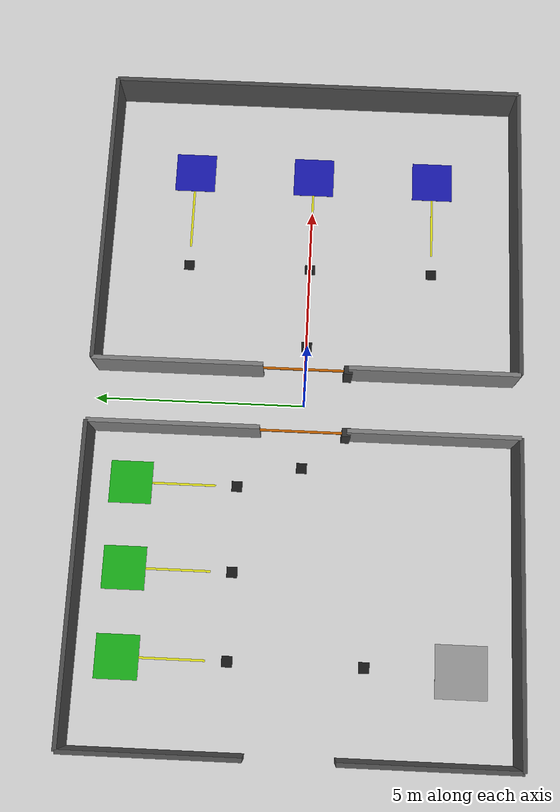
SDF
<?xml version="1.0" ?>
<sdf version="1.6">
  <world name="nebula_saha_world">

    <!-- Fizik motoru -->
    <physics type="ode">
      <max_step_size>0.001</max_step_size>
      <real_time_factor>1.0</real_time_factor>
      <real_time_update_rate>1000</real_time_update_rate>
    </physics>

    <!-- Güneş ışığı -->
    <light name="sun" type="directional">
      <cast_shadows>true</cast_shadows>
      <pose>0 0 12 0 0 0</pose>
      <diffuse>0.8 0.8 0.8 1</diffuse>
      <specular>0.2 0.2 0.2 1</specular>
      <direction>-0.5 0.1 -0.9</direction>
    </light>

    <!-- Zemin -->
    <model name="ground_plane">
      <static>true</static>
      <link name="link">
        <collision name="collision">
          <geometry>
            <plane>
              <normal>0 0 1</normal>
              <size>100 100</size>
            </plane>
          </geometry>
          <surface>
            <friction>
              <ode><mu>100</mu><mu2>50</mu2></ode>
            </friction>
          </surface>
        </collision>
        <visual name="visual">
          <geometry>
            <plane>
              <normal>0 0 1</normal>
              <size>100 100</size>
            </plane>
          </geometry>
          <material>
            <ambient>0.85 0.85 0.85 1</ambient>
            <diffuse>0.85 0.85 0.85 1</diffuse>
          </material>
        </visual>
      </link>
    </model>

    <!-- ===== DIŞ ÇERÇEVE DUVARLARI (Giriş/Çıkış Açıklıkları ile Birlikte) ===== -->

    <!-- Üst Duvar (Y = 5, Koridor Girişi İçin Ortası Açık: x = -0.75 ile x = 0.75 arası boşluk) -->
    <!-- Üst Duvar Sol Kısım -->
    <model name="outer_wall_top_left">
      <static>true</static>
      <pose>-4.375 5 0.5 0 0 0</pose>
      <link name="link">
        <collision name="collision">
          <geometry><box><size>7.25 0.1 1.0</size></box></geometry>
        </collision>
        <visual name="visual">
          <geometry><box><size>7.25 0.1 1.0</size></box></geometry>
          <material><ambient>0.3 0.3 0.3 1</ambient><diffuse>0.3 0.3 0.3 1</diffuse></material>
        </visual>
      </link>
    </model>

    <!-- Üst Duvar Sağ Kısım -->
    <model name="outer_wall_top_right">
      <static>true</static>
      <pose>4.375 5 0.5 0 0 0</pose>
      <link name="link">
        <collision name="collision">
          <geometry><box><size>7.25 0.1 1.0</size></box></geometry>
        </collision>
        <visual name="visual">
          <geometry><box><size>7.25 0.1 1.0</size></box></geometry>
          <material><ambient>0.3 0.3 0.3 1</ambient><diffuse>0.3 0.3 0.3 1</diffuse></material>
        </visual>
      </link>
    </model>

    <!-- Alt Duvar (Y = -5, Koridor Çıkışı İçin Ortası Açık: x = -0.75 ile x = 0.75 arası boşluk) -->
    <!-- Alt Duvar Sol Kısım -->
    <model name="outer_wall_bottom_left">
      <static>true</static>
      <pose>-4.375 -5 0.5 0 0 0</pose>
      <link name="link">
        <collision name="collision">
          <geometry><box><size>7.25 0.1 1.0</size></box></geometry>
        </collision>
        <visual name="visual">
          <geometry><box><size>7.25 0.1 1.0</size></box></geometry>
          <material><ambient>0.3 0.3 0.3 1</ambient><diffuse>0.3 0.3 0.3 1</diffuse></material>
        </visual>
      </link>
    </model>

    <!-- Alt Duvar Sağ Kısım -->
    <model name="outer_wall_bottom_right">
      <static>true</static>
      <pose>4.375 -5 0.5 0 0 0</pose>
      <link name="link">
        <collision name="collision">
          <geometry><box><size>7.25 0.1 1.0</size></box></geometry>
        </collision>
        <visual name="visual">
          <geometry><box><size>7.25 0.1 1.0</size></box></geometry>
          <material><ambient>0.3 0.3 0.3 1</ambient><diffuse>0.3 0.3 0.3 1</diffuse></material>
        </visual>
      </link>
    </model>

    <!-- Sol Dış Duvar (X = -8, Sol Orta Kapı Açıklığı İçin Ortası Açık: y = -1.0 ile y = 1.0 arası boşluk) -->
    <!-- Sol Duvar Üst Kısım -->
    <model name="outer_wall_left_top">
      <static>true</static>
      <pose>-8 3.0 0.5 0 0 0</pose>
      <link name="link">
        <collision name="collision">
          <geometry><box><size>0.1 4.0 1.0</size></box></geometry>
        </collision>
        <visual name="visual">
          <geometry><box><size>0.1 4.0 1.0</size></box></geometry>
          <material><ambient>0.3 0.3 0.3 1</ambient><diffuse>0.3 0.3 0.3 1</diffuse></material>
        </visual>
      </link>
    </model>

    <!-- Sol Duvar Alt Kısım -->
    <model name="outer_wall_left_bottom">
      <static>true</static>
      <pose>-8 -3.0 0.5 0 0 0</pose>
      <link name="link">
        <collision name="collision">
          <geometry><box><size>0.1 4.0 1.0</size></box></geometry>
        </collision>
        <visual name="visual">
          <geometry><box><size>0.1 4.0 1.0</size></box></geometry>
          <material><ambient>0.3 0.3 0.3 1</ambient><diffuse>0.3 0.3 0.3 1</diffuse></material>
        </visual>
      </link>
    </model>

    <!-- Sağ Dış Duvar (X = 8, Tam Kapalı) -->
    <model name="outer_wall_right">
      <static>true</static>
      <pose>8 0 0.5 0 0 0</pose>
      <link name="link">
        <collision name="collision">
          <geometry><box><size>0.1 10.0 1.0</size></box></geometry>
        </collision>
        <visual name="visual">
          <geometry><box><size>0.1 10.0 1.0</size></box></geometry>
          <material><ambient>0.3 0.3 0.3 1</ambient><diffuse>0.3 0.3 0.3 1</diffuse></material>
        </visual>
      </link>
    </model>

    <!-- ===== ÇİFT BÖLME KORİDOR DUVARLARI VE KAPILAR ===== -->
    <!-- Sol Koridor Duvarı Üst Kısım -->
    <model name="left_partition_wall_top">
      <static>true</static>
      <pose>-0.75 3.0 0.5 0 0 0</pose>
      <link name="link">
        <collision name="collision">
          <geometry><box><size>0.1 4.0 1.0</size></box></geometry>
        </collision>
        <visual name="visual">
          <geometry><box><size>0.1 4.0 1.0</size></box></geometry>
          <material><ambient>0.5 0.5 0.5 1</ambient><diffuse>0.5 0.5 0.5 1</diffuse></material>
        </visual>
      </link>
    </model>

    <!-- Sol Koridor Duvarı Alt Kısım -->
    <model name="left_partition_wall_bottom">
      <static>true</static>
      <pose>-0.75 -3.0 0.5 0 0 0</pose>
      <link name="link">
        <collision name="collision">
          <geometry><box><size>0.1 4.0 1.0</size></box></geometry>
        </collision>
        <visual name="visual">
          <geometry><box><size>0.1 4.0 1.0</size></box></geometry>
          <material><ambient>0.5 0.5 0.5 1</ambient><diffuse>0.5 0.5 0.5 1</diffuse></material>
        </visual>
      </link>
    </model>

    <!-- SOL BARİYER SİSTEMİ -->
    <!-- Sol Bariyer Kasası (Base) -->
    <model name="left_barrier_base">
      <static>true</static>
      <pose>-0.75 -1.0 0.4 0 0 0</pose>
      <link name="link">
        <collision name="collision"><geometry><box><size>0.2 0.2 0.8</size></box></geometry></collision>
        <visual name="visual">
          <geometry><box><size>0.2 0.2 0.8</size></box></geometry>
          <material><ambient>0.2 0.2 0.2 1</ambient><diffuse>0.2 0.2 0.2 1</diffuse></material>
        </visual>
      </link>
    </model>

    <!-- Sol Bariyer Kolu (Arm) -->
    <model name="left_barrier_arm">
      <static>true</static>
      <pose>-0.75 0.0 0.65 0 0 0</pose>
      <link name="link">
        <collision name="collision"><geometry><box><size>0.05 2.0 0.05</size></box></geometry></collision>
        <visual name="visual">
          <geometry><box><size>0.05 2.0 0.05</size></box></geometry>
          <material><ambient>0.8 0.4 0.0 1</ambient><diffuse>0.8 0.4 0.0 1</diffuse></material> <!-- Turuncu Bariyer Kolu -->
        </visual>
      </link>
    </model>

    <!-- Sağ Koridor Duvarı Üst Kısım -->
    <model name="right_partition_wall_top">
      <static>true</static>
      <pose>0.75 3.0 0.5 0 0 0</pose>
      <link name="link">
        <collision name="collision">
          <geometry><box><size>0.1 4.0 1.0</size></box></geometry>
        </collision>
        <visual name="visual">
          <geometry><box><size>0.1 4.0 1.0</size></box></geometry>
          <material><ambient>0.5 0.5 0.5 1</ambient><diffuse>0.5 0.5 0.5 1</diffuse></material>
        </visual>
      </link>
    </model>

    <!-- Sağ Koridor Duvarı Alt Kısım -->
    <model name="right_partition_wall_bottom">
      <static>true</static>
      <pose>0.75 -3.0 0.5 0 0 0</pose>
      <link name="link">
        <collision name="collision">
          <geometry><box><size>0.1 4.0 1.0</size></box></geometry>
        </collision>
        <visual name="visual">
          <geometry><box><size>0.1 4.0 1.0</size></box></geometry>
          <material><ambient>0.5 0.5 0.5 1</ambient><diffuse>0.5 0.5 0.5 1</diffuse></material>
        </visual>
      </link>
    </model>

    <!-- SAĞ BARİYER SİSTEMİ -->
    <!-- Sağ Bariyer Kasası (Base) -->
    <model name="right_barrier_base">
      <static>true</static>
      <pose>0.75 -1.0 0.4 0 0 0</pose>
      <link name="link">
        <collision name="collision"><geometry><box><size>0.2 0.2 0.8</size></box></geometry></collision>
        <visual name="visual">
          <geometry><box><size>0.2 0.2 0.8</size></box></geometry>
          <material><ambient>0.2 0.2 0.2 1</ambient><diffuse>0.2 0.2 0.2 1</diffuse></material>
        </visual>
      </link>
    </model>

    <!-- Sağ Bariyer Kolu (Arm) -->
    <model name="right_barrier_arm">
      <static>true</static>
      <pose>0.75 0.0 0.65 0 0 0</pose>
      <link name="link">
        <collision name="collision"><geometry><box><size>0.05 2.0 0.05</size></box></geometry></collision>
        <visual name="visual">
          <geometry><box><size>0.05 2.0 0.05</size></box></geometry>
          <material><ambient>0.8 0.4 0.0 1</ambient><diffuse>0.8 0.4 0.0 1</diffuse></material>
        </visual>
      </link>
    </model>

    <!-- ===== BAŞLANGIÇ VE YÜK ALMA/BIRAKMA BÖLGELERİ ===== -->
    <!-- Başlangıç Alanı (Zemin Seviyesinde İnce Plaka) -->
    <model name="start_area">
      <static>true</static>
      <pose>-6 -3.8 0.002 0 0 0</pose>
      <link name="link">
        <visual name="visual">
          <geometry><box><size>1.2 1.2 0.004</size></box></geometry>
          <material><ambient>0.6 0.6 0.6 1</ambient><diffuse>0.6 0.6 0.6 1</diffuse></material>
        </visual>
      </link>
    </model>

    <!-- Yük Alma Alanları (Yeşil Renk: A1, A2, A3) -->
    <model name="area_a1">
      <static>true</static>
      <pose>-6 4 0.002 0 0 0</pose>
      <link name="link">
        <visual name="visual">
          <geometry><box><size>1.0 1.0 0.004</size></box></geometry>
          <material><ambient>0.1 0.7 0.1 1</ambient><diffuse>0.1 0.7 0.1 1</diffuse></material>
        </visual>
      </link>
    </model>

    <model name="area_a2">
      <static>true</static>
      <pose>-4 4 0.002 0 0 0</pose>
      <link name="link">
        <visual name="visual">
          <geometry><box><size>1.0 1.0 0.004</size></box></geometry>
          <material><ambient>0.1 0.7 0.1 1</ambient><diffuse>0.1 0.7 0.1 1</diffuse></material>
        </visual>
      </link>
    </model>

    <model name="area_a3">
      <static>true</static>
      <pose>-2 4 0.002 0 0 0</pose>
      <link name="link">
        <visual name="visual">
          <geometry><box><size>1.0 1.0 0.004</size></box></geometry>
          <material><ambient>0.1 0.7 0.1 1</ambient><diffuse>0.1 0.7 0.1 1</diffuse></material>
        </visual>
      </link>
    </model>

    <!-- Yük Bırakma Alanları (Mavi Renk: B1, B2, B3) -->
    <model name="area_b1">
      <static>true</static>
      <pose>6 3 0.002 0 0 0</pose>
      <link name="link">
        <visual name="visual">
          <geometry><box><size>1.0 1.0 0.004</size></box></geometry>
          <material><ambient>0.1 0.1 0.7 1</ambient><diffuse>0.1 0.1 0.7 1</diffuse></material>
        </visual>
      </link>
    </model>

    <model name="area_b2">
      <static>true</static>
      <pose>6 0 0.002 0 0 0</pose>
      <link name="link">
        <visual name="visual">
          <geometry><box><size>1.0 1.0 0.004</size></box></geometry>
          <material><ambient>0.1 0.1 0.7 1</ambient><diffuse>0.1 0.1 0.7 1</diffuse></material>
        </visual>
      </link>
    </model>

    <model name="area_b3">
      <static>true</static>
      <pose>6 -3 0.002 0 0 0</pose>
      <link name="link">
        <visual name="visual">
          <geometry><box><size>1.0 1.0 0.004</size></box></geometry>
          <material><ambient>0.1 0.1 0.7 1</ambient><diffuse>0.1 0.1 0.7 1</diffuse></material>
        </visual>
      </link>
    </model>

    <!-- ===== 1.5 METRE HASSAS HİZALAMA ÇİZGİLERİ ===== -->
    <!-- A1 Giriş Çizgisi -->
    <model name="line_a1">
      <static>true</static>
      <pose>-6 2.75 0.003 0 0 0</pose>
      <link name="link">
        <visual name="visual">
          <geometry><box><size>0.05 1.5 0.002</size></box></geometry>
          <material><ambient>0.9 0.9 0.1 1</ambient><diffuse>0.9 0.9 0.1 1</diffuse></material> <!-- Sarı Şerit -->
        </visual>
      </link>
    </model>

    <!-- A2 Giriş Çizgisi -->
    <model name="line_a2">
      <static>true</static>
      <pose>-4 2.75 0.003 0 0 0</pose>
      <link name="link">
        <visual name="visual">
          <geometry><box><size>0.05 1.5 0.002</size></box></geometry>
          <material><ambient>0.9 0.9 0.1 1</ambient><diffuse>0.9 0.9 0.1 1</diffuse></material>
        </visual>
      </link>
    </model>

    <!-- A3 Giriş Çizgisi -->
    <model name="line_a3">
      <static>true</static>
      <pose>-2 2.75 0.003 0 0 0</pose>
      <link name="link">
        <visual name="visual">
          <geometry><box><size>0.05 1.5 0.002</size></box></geometry>
          <material><ambient>0.9 0.9 0.1 1</ambient><diffuse>0.9 0.9 0.1 1</diffuse></material>
        </visual>
      </link>
    </model>

    <!-- B1 Giriş Çizgisi (Yatay) -->
    <model name="line_b1">
      <static>true</static>
      <pose>4.75 3 0.003 0 0 0</pose>
      <link name="link">
        <visual name="visual">
          <geometry><box><size>1.5 0.05 0.002</size></box></geometry>
          <material><ambient>0.9 0.9 0.1 1</ambient><diffuse>0.9 0.9 0.1 1</diffuse></material>
        </visual>
      </link>
    </model>

    <!-- B2 Giriş Çizgisi (Yatay) -->
    <model name="line_b2">
      <static>true</static>
      <pose>4.75 0 0.003 0 0 0</pose>
      <link name="link">
        <visual name="visual">
          <geometry><box><size>1.5 0.05 0.002</size></box></geometry>
          <material><ambient>0.9 0.9 0.1 1</ambient><diffuse>0.9 0.9 0.1 1</diffuse></material>
        </visual>
      </link>
    </model>

    <!-- B3 Giriş Çizgisi (Yatay) -->
    <model name="line_b3">
      <static>true</static>
      <pose>4.75 -3 0.003 0 0 0</pose>
      <link name="link">
        <visual name="visual">
          <geometry><box><size>1.5 0.05 0.002</size></box></geometry>
          <material><ambient>0.9 0.9 0.1 1</ambient><diffuse>0.9 0.9 0.1 1</diffuse></material>
        </visual>
      </link>
    </model>

    <!-- ===== QR KOD MARKERLARI (Temsili Zemin Kareleri) ===== -->
    <!-- q1 (Başlangıç-D1 Arası) -->
    <model name="qr_q1">
      <static>true</static>
      <pose>-6 -1.6 0.004 0 0 0</pose>
      <link name="link">
        <visual name="visual">
          <geometry><box><size>0.25 0.25 0.002</size></box></geometry>
          <material><ambient>0.1 0.1 0.1 1</ambient><diffuse>0.1 0.1 0.1 1</diffuse></material>
        </visual>
      </link>
    </model>

    <!-- q2 (A1 Önü) -->
    <model name="qr_q2">
      <static>true</static>
      <pose>-6 1.5 0.004 0 0 0</pose>
      <link name="link">
        <visual name="visual">
          <geometry><box><size>0.25 0.25 0.002</size></box></geometry>
          <material><ambient>0.1 0.1 0.1 1</ambient><diffuse>0.1 0.1 0.1 1</diffuse></material>
        </visual>
      </link>
    </model>

    <!-- q3 (A2 Önü) -->
    <model name="qr_q3">
      <static>true</static>
      <pose>-4 1.5 0.004 0 0 0</pose>
      <link name="link">
        <visual name="visual">
          <geometry><box><size>0.25 0.25 0.002</size></box></geometry>
          <material><ambient>0.1 0.1 0.1 1</ambient><diffuse>0.1 0.1 0.1 1</diffuse></material>
        </visual>
      </link>
    </model>

    <!-- q4 (A3 Önü) -->
    <model name="qr_q4">
      <static>true</static>
      <pose>-2 1.5 0.004 0 0 0</pose>
      <link name="link">
        <visual name="visual">
          <geometry><box><size>0.25 0.25 0.002</size></box></geometry>
          <material><ambient>0.1 0.1 0.1 1</ambient><diffuse>0.1 0.1 0.1 1</diffuse></material>
        </visual>
      </link>
    </model>

    <!-- q5 (Sol Kapı Önü) -->
    <model name="qr_q5">
      <static>true</static>
      <pose>-1.5 0 0.004 0 0 0</pose>
      <link name="link">
        <visual name="visual">
          <geometry><box><size>0.25 0.25 0.002</size></box></geometry>
          <material><ambient>0.1 0.1 0.1 1</ambient><diffuse>0.1 0.1 0.1 1</diffuse></material>
        </visual>
      </link>
    </model>

    <!-- q6 (Sağ Kapı Arkası) -->
    <model name="qr_q6">
      <static>true</static>
      <pose>1.5 0 0.004 0 0 0</pose>
      <link name="link">
        <visual name="visual">
          <geometry><box><size>0.25 0.25 0.002</size></box></geometry>
          <material><ambient>0.1 0.1 0.1 1</ambient><diffuse>0.1 0.1 0.1 1</diffuse></material>
        </visual>
      </link>
    </model>

    <!-- q7 (B3 Önü) -->
    <model name="qr_q7">
      <static>true</static>
      <pose>3.5 -3 0.004 0 0 0</pose>
      <link name="link">
        <visual name="visual">
          <geometry><box><size>0.25 0.25 0.002</size></box></geometry>
          <material><ambient>0.1 0.1 0.1 1</ambient><diffuse>0.1 0.1 0.1 1</diffuse></material>
        </visual>
      </link>
    </model>

    <!-- q8 (B2 Önü) -->
    <model name="qr_q8">
      <static>true</static>
      <pose>3.5 0 0.004 0 0 0</pose>
      <link name="link">
        <visual name="visual">
          <geometry><box><size>0.25 0.25 0.002</size></box></geometry>
          <material><ambient>0.1 0.1 0.1 1</ambient><diffuse>0.1 0.1 0.1 1</diffuse></material>
        </visual>
      </link>
    </model>

    <!-- q9 (B1 Önü) -->
    <model name="qr_q9">
      <static>true</static>
      <pose>3.5 3 0.004 0 0 0</pose>
      <link name="link">
        <visual name="visual">
          <geometry><box><size>0.25 0.25 0.002</size></box></geometry>
          <material><ambient>0.1 0.1 0.1 1</ambient><diffuse>0.1 0.1 0.1 1</diffuse></material>
        </visual>
      </link>
    </model>

  </world>
</sdf>
